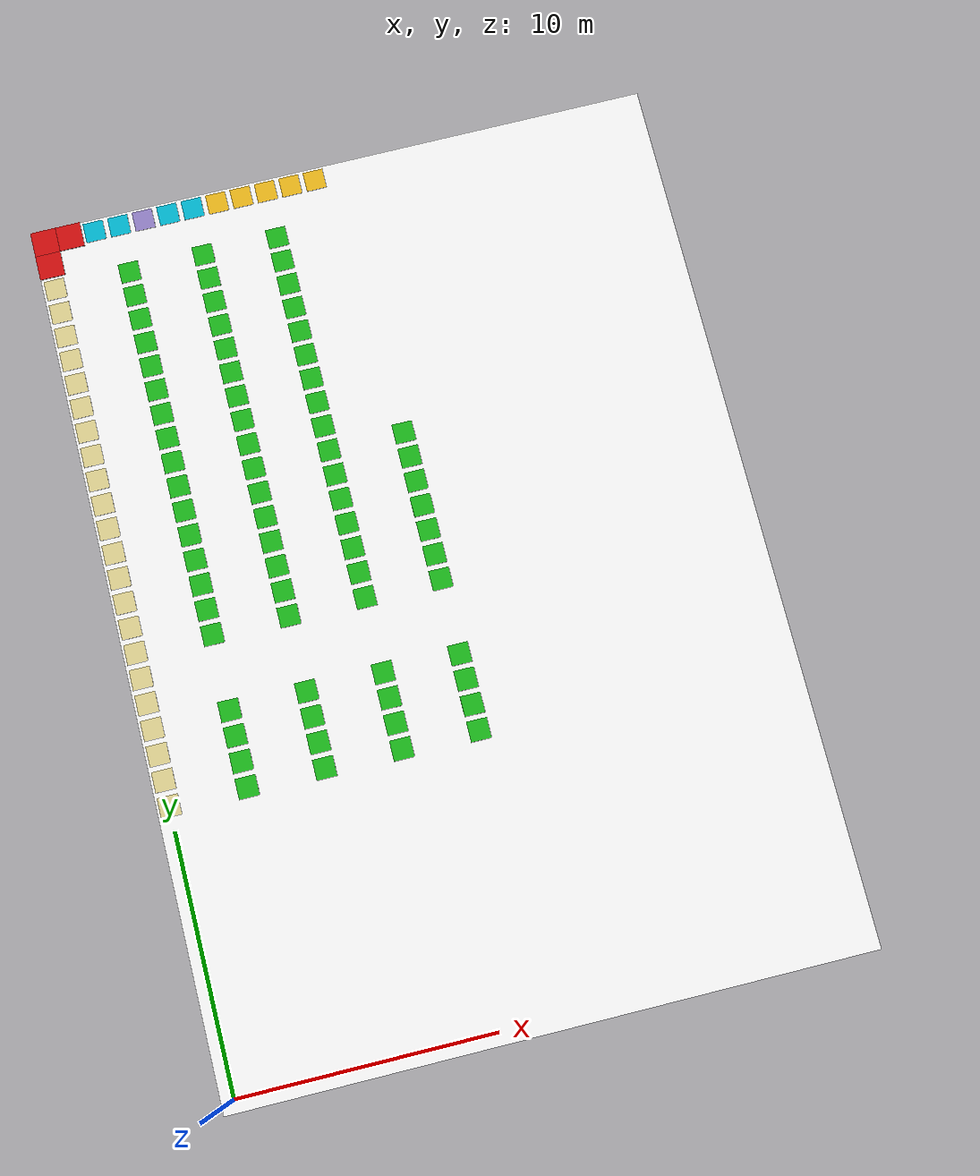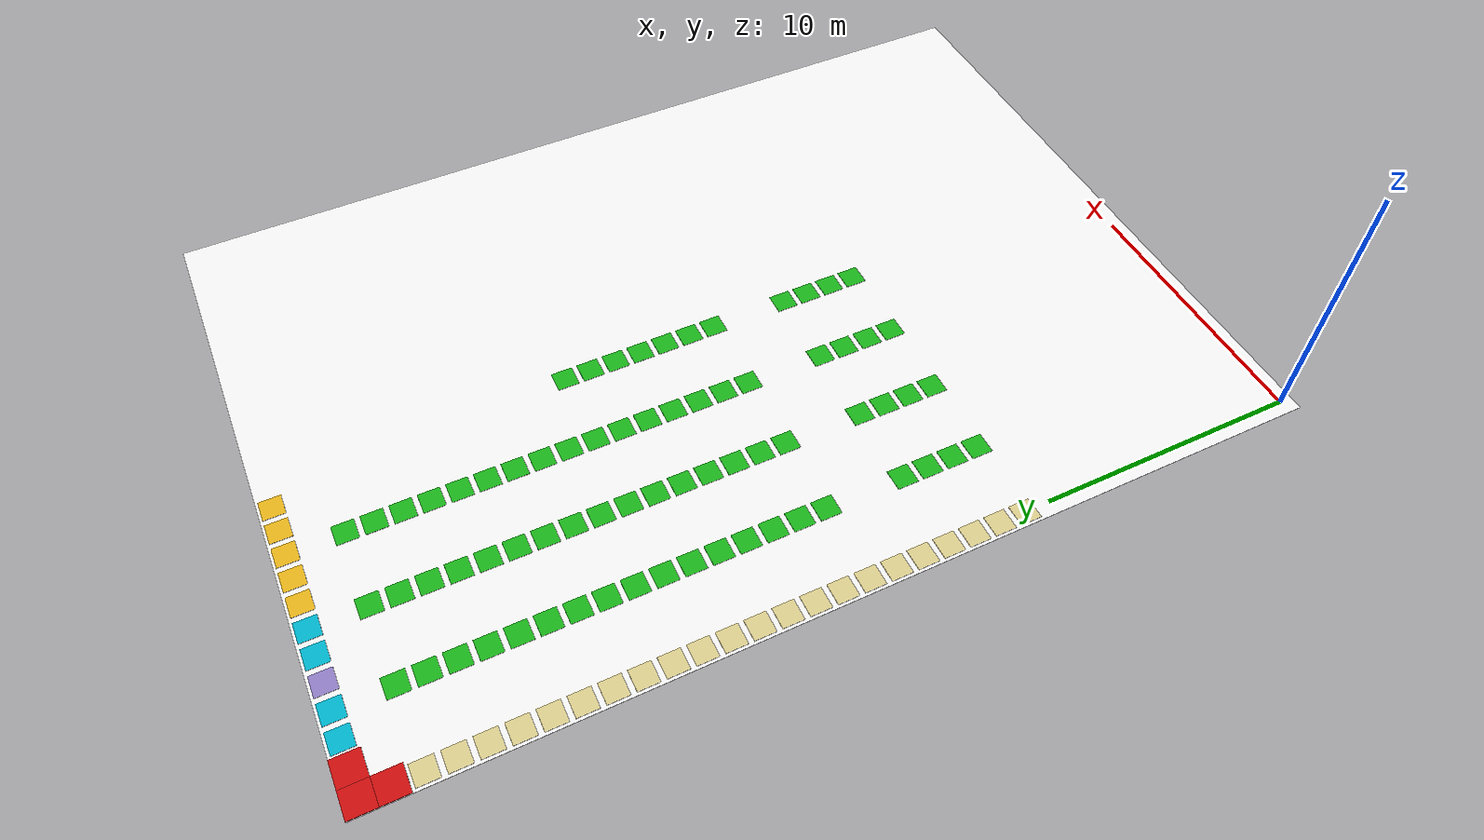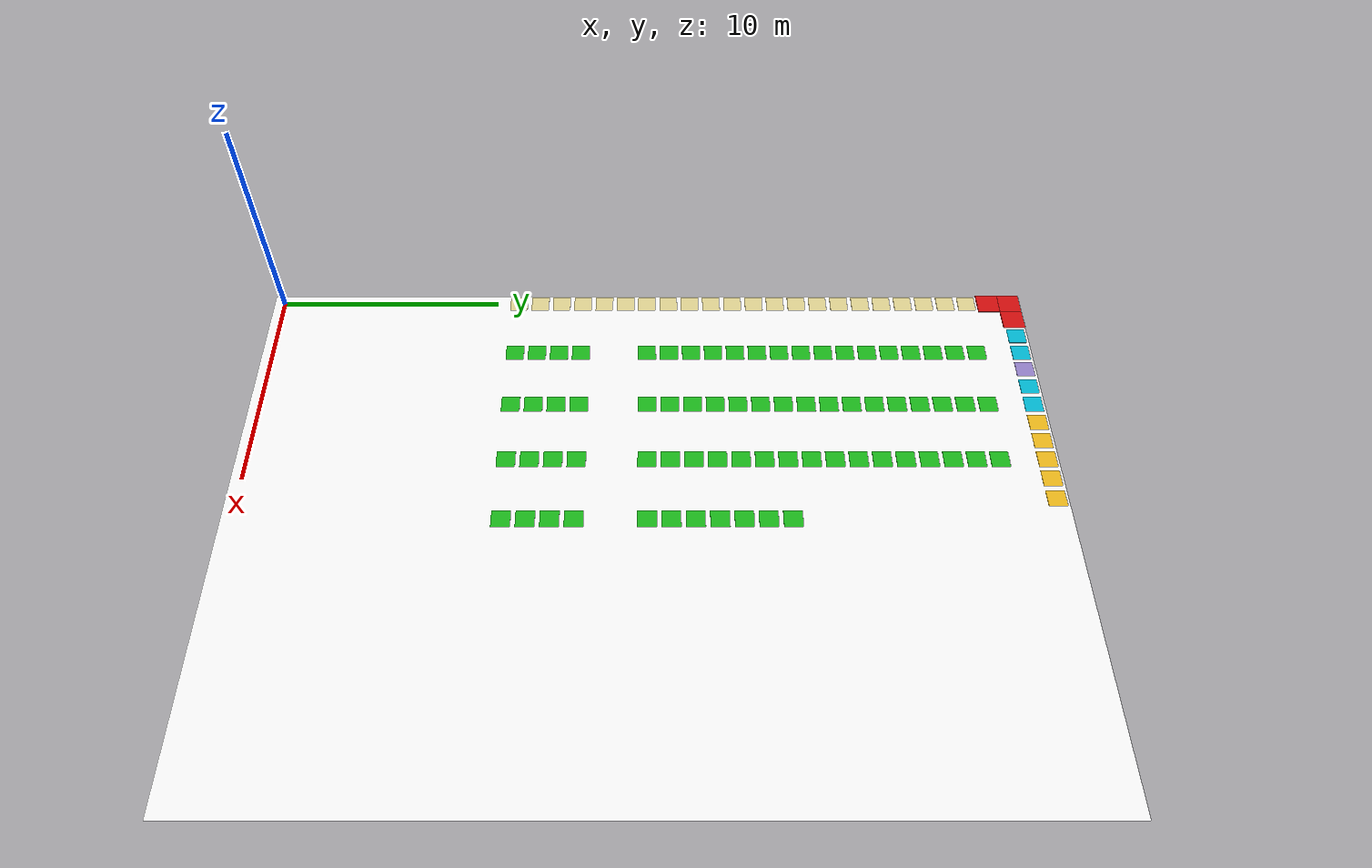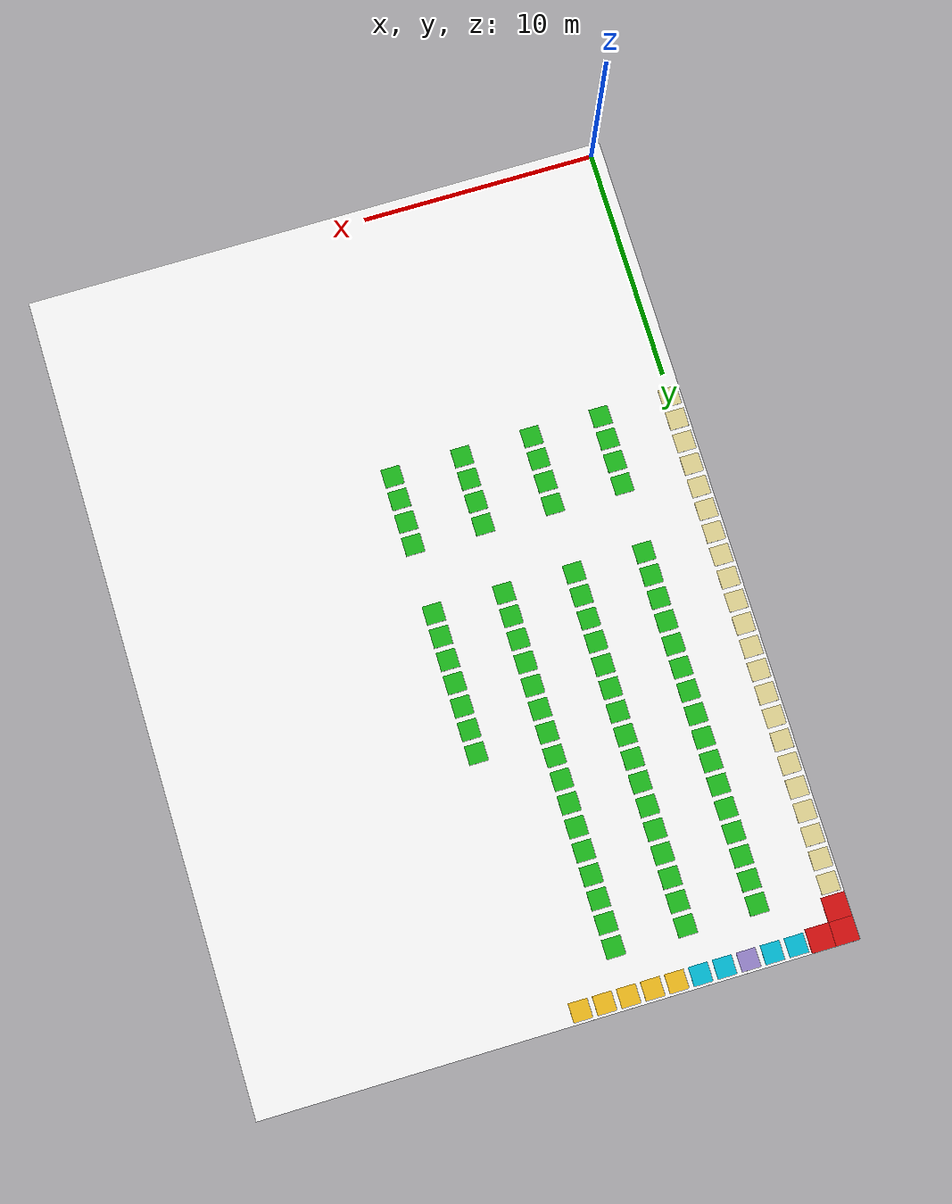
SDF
<sdf version="1.10">
 <world name="my_map_60">
  <model name="warehouse_floor">
   <static>true</static>
   <pose>12.0
        17.0
        0.0
        0 0 0</pose>
   <link name="floor_link">
    <visual name="floor_visual">
     <geometry><box><size>25.0
                35.0
                0.02</size></box></geometry>
     <material><ambient>0.95 0.95 0.95 1</ambient><diffuse>0.95 0.95 0.95 1</diffuse></material>
    </visual>
   </link>
  </model>
  <model name="blocked_0002">
   <static>true</static>
   <pose>0.0
        33.0
        0.045
        0 0 0</pose>
   <link name="link">
    <visual name="visual">
     <geometry><box><size>1.0
                1.0
                0.05</size></box></geometry>
     <material><ambient>0.8 0.05 0.05 1</ambient><diffuse>0.8 0.05 0.05 1</diffuse></material>
    </visual>
   </link>
  </model>
  <model name="blocked_0003">
   <static>true</static>
   <pose>0.0
        34.0
        0.045
        0 0 0</pose>
   <link name="link">
    <visual name="visual">
     <geometry><box><size>1.0
                1.0
                0.05</size></box></geometry>
     <material><ambient>0.8 0.05 0.05 1</ambient><diffuse>0.8 0.05 0.05 1</diffuse></material>
    </visual>
   </link>
  </model>
  <model name="blocked_0005">
   <static>true</static>
   <pose>1.0
        34.0
        0.045
        0 0 0</pose>
   <link name="link">
    <visual name="visual">
     <geometry><box><size>1.0
                1.0
                0.05</size></box></geometry>
     <material><ambient>0.8 0.05 0.05 1</ambient><diffuse>0.8 0.05 0.05 1</diffuse></material>
    </visual>
   </link>
  </model>
  <model name="charging_001">
   <static>true</static>
   <pose>2.0
        34.0
        0.02
        0 0 0</pose>
   <link name="link">
    <visual name="visual">
     <geometry><box><size>0.8
                0.8
                0.02</size></box></geometry>
     <material><ambient>0.00 0.70 0.80 1</ambient><diffuse>0.00 0.70 0.80 1</diffuse></material>
    </visual>
   </link>
  </model>
  <model name="charging_002">
   <static>true</static>
   <pose>3.0
        34.0
        0.02
        0 0 0</pose>
   <link name="link">
    <visual name="visual">
     <geometry><box><size>0.8
                0.8
                0.02</size></box></geometry>
     <material><ambient>0.00 0.70 0.80 1</ambient><diffuse>0.00 0.70 0.80 1</diffuse></material>
    </visual>
   </link>
  </model>
  <model name="charge_queue_001">
   <static>true</static>
   <pose>4.0
        34.0
        0.02
        0 0 0</pose>
   <link name="link">
    <visual name="visual">
     <geometry><box><size>0.8
                0.8
                0.02</size></box></geometry>
     <material><ambient>0.56 0.49 0.76 1</ambient><diffuse>0.56 0.49 0.76 1</diffuse></material>
    </visual>
   </link>
  </model>
  <model name="charging_003">
   <static>true</static>
   <pose>5.0
        34.0
        0.02
        0 0 0</pose>
   <link name="link">
    <visual name="visual">
     <geometry><box><size>0.8
                0.8
                0.02</size></box></geometry>
     <material><ambient>0.00 0.70 0.80 1</ambient><diffuse>0.00 0.70 0.80 1</diffuse></material>
    </visual>
   </link>
  </model>
  <model name="charging_004">
   <static>true</static>
   <pose>6.0
        34.0
        0.02
        0 0 0</pose>
   <link name="link">
    <visual name="visual">
     <geometry><box><size>0.8
                0.8
                0.02</size></box></geometry>
     <material><ambient>0.00 0.70 0.80 1</ambient><diffuse>0.00 0.70 0.80 1</diffuse></material>
    </visual>
   </link>
  </model>
  <model name="dropoff_001">
   <static>true</static>
   <pose>7.0
        34.0
        0.02
        0 0 0</pose>
   <link name="link">
    <visual name="visual">
     <geometry><box><size>0.8
                0.8
                0.02</size></box></geometry>
     <material><ambient>0.90 0.70 0.10 1</ambient><diffuse>0.90 0.70 0.10 1</diffuse></material>
    </visual>
   </link>
  </model>
  <model name="dropoff_002">
   <static>true</static>
   <pose>8.0
        34.0
        0.02
        0 0 0</pose>
   <link name="link">
    <visual name="visual">
     <geometry><box><size>0.8
                0.8
                0.02</size></box></geometry>
     <material><ambient>0.90 0.70 0.10 1</ambient><diffuse>0.90 0.70 0.10 1</diffuse></material>
    </visual>
   </link>
  </model>
  <model name="dropoff_003">
   <static>true</static>
   <pose>9.0
        34.0
        0.02
        0 0 0</pose>
   <link name="link">
    <visual name="visual">
     <geometry><box><size>0.8
                0.8
                0.02</size></box></geometry>
     <material><ambient>0.90 0.70 0.10 1</ambient><diffuse>0.90 0.70 0.10 1</diffuse></material>
    </visual>
   </link>
  </model>
  <model name="dropoff_004">
   <static>true</static>
   <pose>10.0
        34.0
        0.02
        0 0 0</pose>
   <link name="link">
    <visual name="visual">
     <geometry><box><size>0.8
                0.8
                0.02</size></box></geometry>
     <material><ambient>0.90 0.70 0.10 1</ambient><diffuse>0.90 0.70 0.10 1</diffuse></material>
    </visual>
   </link>
  </model>
  <model name="dropoff_005">
   <static>true</static>
   <pose>11.0
        34.0
        0.02
        0 0 0</pose>
   <link name="link">
    <visual name="visual">
     <geometry><box><size>0.8
                0.8
                0.02</size></box></geometry>
     <material><ambient>0.90 0.70 0.10 1</ambient><diffuse>0.90 0.70 0.10 1</diffuse></material>
    </visual>
   </link>
  </model>
  <model name="staging_001">
   <static>true</static>
   <pose>0.0
        32.0
        0.02
        0 0 0</pose>
   <link name="link">
    <visual name="visual">
     <geometry><box><size>0.8
                0.8
                0.02</size></box></geometry>
     <material><ambient>0.85 0.80 0.55 1</ambient><diffuse>0.85 0.80 0.55 1</diffuse></material>
    </visual>
   </link>
  </model>
  <model name="shelf_001">
   <static>true</static>
   <pose>3.0
        32.0
        0.02
        0 0 0</pose>
   <link name="link">
    <visual name="visual">
     <geometry><box><size>0.8
                0.8
                0.02</size></box></geometry>
     <material><ambient>0.10 0.70 0.10 1</ambient><diffuse>0.10 0.70 0.10 1</diffuse></material>
    </visual>
   </link>
  </model>
  <model name="shelf_002">
   <static>true</static>
   <pose>6.0
        32.0
        0.02
        0 0 0</pose>
   <link name="link">
    <visual name="visual">
     <geometry><box><size>0.8
                0.8
                0.02</size></box></geometry>
     <material><ambient>0.10 0.70 0.10 1</ambient><diffuse>0.10 0.70 0.10 1</diffuse></material>
    </visual>
   </link>
  </model>
  <model name="shelf_003">
   <static>true</static>
   <pose>9.0
        32.0
        0.02
        0 0 0</pose>
   <link name="link">
    <visual name="visual">
     <geometry><box><size>0.8
                0.8
                0.02</size></box></geometry>
     <material><ambient>0.10 0.70 0.10 1</ambient><diffuse>0.10 0.70 0.10 1</diffuse></material>
    </visual>
   </link>
  </model>
  <model name="staging_003">
   <static>true</static>
   <pose>0.0
        31.0
        0.02
        0 0 0</pose>
   <link name="link">
    <visual name="visual">
     <geometry><box><size>0.8
                0.8
                0.02</size></box></geometry>
     <material><ambient>0.85 0.80 0.55 1</ambient><diffuse>0.85 0.80 0.55 1</diffuse></material>
    </visual>
   </link>
  </model>
  <model name="shelf_008">
   <static>true</static>
   <pose>3.0
        31.0
        0.02
        0 0 0</pose>
   <link name="link">
    <visual name="visual">
     <geometry><box><size>0.8
                0.8
                0.02</size></box></geometry>
     <material><ambient>0.10 0.70 0.10 1</ambient><diffuse>0.10 0.70 0.10 1</diffuse></material>
    </visual>
   </link>
  </model>
  <model name="shelf_009">
   <static>true</static>
   <pose>6.0
        31.0
        0.02
        0 0 0</pose>
   <link name="link">
    <visual name="visual">
     <geometry><box><size>0.8
                0.8
                0.02</size></box></geometry>
     <material><ambient>0.10 0.70 0.10 1</ambient><diffuse>0.10 0.70 0.10 1</diffuse></material>
    </visual>
   </link>
  </model>
  <model name="shelf_010">
   <static>true</static>
   <pose>9.0
        31.0
        0.02
        0 0 0</pose>
   <link name="link">
    <visual name="visual">
     <geometry><box><size>0.8
                0.8
                0.02</size></box></geometry>
     <material><ambient>0.10 0.70 0.10 1</ambient><diffuse>0.10 0.70 0.10 1</diffuse></material>
    </visual>
   </link>
  </model>
  <model name="staging_005">
   <static>true</static>
   <pose>0.0
        30.0
        0.02
        0 0 0</pose>
   <link name="link">
    <visual name="visual">
     <geometry><box><size>0.8
                0.8
                0.02</size></box></geometry>
     <material><ambient>0.85 0.80 0.55 1</ambient><diffuse>0.85 0.80 0.55 1</diffuse></material>
    </visual>
   </link>
  </model>
  <model name="shelf_015">
   <static>true</static>
   <pose>3.0
        30.0
        0.02
        0 0 0</pose>
   <link name="link">
    <visual name="visual">
     <geometry><box><size>0.8
                0.8
                0.02</size></box></geometry>
     <material><ambient>0.10 0.70 0.10 1</ambient><diffuse>0.10 0.70 0.10 1</diffuse></material>
    </visual>
   </link>
  </model>
  <model name="shelf_016">
   <static>true</static>
   <pose>6.0
        30.0
        0.02
        0 0 0</pose>
   <link name="link">
    <visual name="visual">
     <geometry><box><size>0.8
                0.8
                0.02</size></box></geometry>
     <material><ambient>0.10 0.70 0.10 1</ambient><diffuse>0.10 0.70 0.10 1</diffuse></material>
    </visual>
   </link>
  </model>
  <model name="shelf_017">
   <static>true</static>
   <pose>9.0
        30.0
        0.02
        0 0 0</pose>
   <link name="link">
    <visual name="visual">
     <geometry><box><size>0.8
                0.8
                0.02</size></box></geometry>
     <material><ambient>0.10 0.70 0.10 1</ambient><diffuse>0.10 0.70 0.10 1</diffuse></material>
    </visual>
   </link>
  </model>
  <model name="staging_007">
   <static>true</static>
   <pose>0.0
        29.0
        0.02
        0 0 0</pose>
   <link name="link">
    <visual name="visual">
     <geometry><box><size>0.8
                0.8
                0.02</size></box></geometry>
     <material><ambient>0.85 0.80 0.55 1</ambient><diffuse>0.85 0.80 0.55 1</diffuse></material>
    </visual>
   </link>
  </model>
  <model name="shelf_022">
   <static>true</static>
   <pose>3.0
        29.0
        0.02
        0 0 0</pose>
   <link name="link">
    <visual name="visual">
     <geometry><box><size>0.8
                0.8
                0.02</size></box></geometry>
     <material><ambient>0.10 0.70 0.10 1</ambient><diffuse>0.10 0.70 0.10 1</diffuse></material>
    </visual>
   </link>
  </model>
  <model name="shelf_023">
   <static>true</static>
   <pose>6.0
        29.0
        0.02
        0 0 0</pose>
   <link name="link">
    <visual name="visual">
     <geometry><box><size>0.8
                0.8
                0.02</size></box></geometry>
     <material><ambient>0.10 0.70 0.10 1</ambient><diffuse>0.10 0.70 0.10 1</diffuse></material>
    </visual>
   </link>
  </model>
  <model name="shelf_024">
   <static>true</static>
   <pose>9.0
        29.0
        0.02
        0 0 0</pose>
   <link name="link">
    <visual name="visual">
     <geometry><box><size>0.8
                0.8
                0.02</size></box></geometry>
     <material><ambient>0.10 0.70 0.10 1</ambient><diffuse>0.10 0.70 0.10 1</diffuse></material>
    </visual>
   </link>
  </model>
  <model name="staging_009">
   <static>true</static>
   <pose>0.0
        28.0
        0.02
        0 0 0</pose>
   <link name="link">
    <visual name="visual">
     <geometry><box><size>0.8
                0.8
                0.02</size></box></geometry>
     <material><ambient>0.85 0.80 0.55 1</ambient><diffuse>0.85 0.80 0.55 1</diffuse></material>
    </visual>
   </link>
  </model>
  <model name="shelf_029">
   <static>true</static>
   <pose>3.0
        28.0
        0.02
        0 0 0</pose>
   <link name="link">
    <visual name="visual">
     <geometry><box><size>0.8
                0.8
                0.02</size></box></geometry>
     <material><ambient>0.10 0.70 0.10 1</ambient><diffuse>0.10 0.70 0.10 1</diffuse></material>
    </visual>
   </link>
  </model>
  <model name="shelf_030">
   <static>true</static>
   <pose>6.0
        28.0
        0.02
        0 0 0</pose>
   <link name="link">
    <visual name="visual">
     <geometry><box><size>0.8
                0.8
                0.02</size></box></geometry>
     <material><ambient>0.10 0.70 0.10 1</ambient><diffuse>0.10 0.70 0.10 1</diffuse></material>
    </visual>
   </link>
  </model>
  <model name="shelf_031">
   <static>true</static>
   <pose>9.0
        28.0
        0.02
        0 0 0</pose>
   <link name="link">
    <visual name="visual">
     <geometry><box><size>0.8
                0.8
                0.02</size></box></geometry>
     <material><ambient>0.10 0.70 0.10 1</ambient><diffuse>0.10 0.70 0.10 1</diffuse></material>
    </visual>
   </link>
  </model>
  <model name="staging_011">
   <static>true</static>
   <pose>0.0
        27.0
        0.02
        0 0 0</pose>
   <link name="link">
    <visual name="visual">
     <geometry><box><size>0.8
                0.8
                0.02</size></box></geometry>
     <material><ambient>0.85 0.80 0.55 1</ambient><diffuse>0.85 0.80 0.55 1</diffuse></material>
    </visual>
   </link>
  </model>
  <model name="shelf_036">
   <static>true</static>
   <pose>3.0
        27.0
        0.02
        0 0 0</pose>
   <link name="link">
    <visual name="visual">
     <geometry><box><size>0.8
                0.8
                0.02</size></box></geometry>
     <material><ambient>0.10 0.70 0.10 1</ambient><diffuse>0.10 0.70 0.10 1</diffuse></material>
    </visual>
   </link>
  </model>
  <model name="shelf_037">
   <static>true</static>
   <pose>6.0
        27.0
        0.02
        0 0 0</pose>
   <link name="link">
    <visual name="visual">
     <geometry><box><size>0.8
                0.8
                0.02</size></box></geometry>
     <material><ambient>0.10 0.70 0.10 1</ambient><diffuse>0.10 0.70 0.10 1</diffuse></material>
    </visual>
   </link>
  </model>
  <model name="shelf_038">
   <static>true</static>
   <pose>9.0
        27.0
        0.02
        0 0 0</pose>
   <link name="link">
    <visual name="visual">
     <geometry><box><size>0.8
                0.8
                0.02</size></box></geometry>
     <material><ambient>0.10 0.70 0.10 1</ambient><diffuse>0.10 0.70 0.10 1</diffuse></material>
    </visual>
   </link>
  </model>
  <model name="staging_013">
   <static>true</static>
   <pose>0.0
        26.0
        0.02
        0 0 0</pose>
   <link name="link">
    <visual name="visual">
     <geometry><box><size>0.8
                0.8
                0.02</size></box></geometry>
     <material><ambient>0.85 0.80 0.55 1</ambient><diffuse>0.85 0.80 0.55 1</diffuse></material>
    </visual>
   </link>
  </model>
  <model name="shelf_043">
   <static>true</static>
   <pose>3.0
        26.0
        0.02
        0 0 0</pose>
   <link name="link">
    <visual name="visual">
     <geometry><box><size>0.8
                0.8
                0.02</size></box></geometry>
     <material><ambient>0.10 0.70 0.10 1</ambient><diffuse>0.10 0.70 0.10 1</diffuse></material>
    </visual>
   </link>
  </model>
  <model name="shelf_044">
   <static>true</static>
   <pose>6.0
        26.0
        0.02
        0 0 0</pose>
   <link name="link">
    <visual name="visual">
     <geometry><box><size>0.8
                0.8
                0.02</size></box></geometry>
     <material><ambient>0.10 0.70 0.10 1</ambient><diffuse>0.10 0.70 0.10 1</diffuse></material>
    </visual>
   </link>
  </model>
  <model name="shelf_045">
   <static>true</static>
   <pose>9.0
        26.0
        0.02
        0 0 0</pose>
   <link name="link">
    <visual name="visual">
     <geometry><box><size>0.8
                0.8
                0.02</size></box></geometry>
     <material><ambient>0.10 0.70 0.10 1</ambient><diffuse>0.10 0.70 0.10 1</diffuse></material>
    </visual>
   </link>
  </model>
  <model name="staging_015">
   <static>true</static>
   <pose>0.0
        25.0
        0.02
        0 0 0</pose>
   <link name="link">
    <visual name="visual">
     <geometry><box><size>0.8
                0.8
                0.02</size></box></geometry>
     <material><ambient>0.85 0.80 0.55 1</ambient><diffuse>0.85 0.80 0.55 1</diffuse></material>
    </visual>
   </link>
  </model>
  <model name="shelf_050">
   <static>true</static>
   <pose>3.0
        25.0
        0.02
        0 0 0</pose>
   <link name="link">
    <visual name="visual">
     <geometry><box><size>0.8
                0.8
                0.02</size></box></geometry>
     <material><ambient>0.10 0.70 0.10 1</ambient><diffuse>0.10 0.70 0.10 1</diffuse></material>
    </visual>
   </link>
  </model>
  <model name="shelf_051">
   <static>true</static>
   <pose>6.0
        25.0
        0.02
        0 0 0</pose>
   <link name="link">
    <visual name="visual">
     <geometry><box><size>0.8
                0.8
                0.02</size></box></geometry>
     <material><ambient>0.10 0.70 0.10 1</ambient><diffuse>0.10 0.70 0.10 1</diffuse></material>
    </visual>
   </link>
  </model>
  <model name="shelf_052">
   <static>true</static>
   <pose>9.0
        25.0
        0.02
        0 0 0</pose>
   <link name="link">
    <visual name="visual">
     <geometry><box><size>0.8
                0.8
                0.02</size></box></geometry>
     <material><ambient>0.10 0.70 0.10 1</ambient><diffuse>0.10 0.70 0.10 1</diffuse></material>
    </visual>
   </link>
  </model>
  <model name="staging_017">
   <static>true</static>
   <pose>0.0
        24.0
        0.02
        0 0 0</pose>
   <link name="link">
    <visual name="visual">
     <geometry><box><size>0.8
                0.8
                0.02</size></box></geometry>
     <material><ambient>0.85 0.80 0.55 1</ambient><diffuse>0.85 0.80 0.55 1</diffuse></material>
    </visual>
   </link>
  </model>
  <model name="shelf_057">
   <static>true</static>
   <pose>3.0
        24.0
        0.02
        0 0 0</pose>
   <link name="link">
    <visual name="visual">
     <geometry><box><size>0.8
                0.8
                0.02</size></box></geometry>
     <material><ambient>0.10 0.70 0.10 1</ambient><diffuse>0.10 0.70 0.10 1</diffuse></material>
    </visual>
   </link>
  </model>
  <model name="shelf_058">
   <static>true</static>
   <pose>6.0
        24.0
        0.02
        0 0 0</pose>
   <link name="link">
    <visual name="visual">
     <geometry><box><size>0.8
                0.8
                0.02</size></box></geometry>
     <material><ambient>0.10 0.70 0.10 1</ambient><diffuse>0.10 0.70 0.10 1</diffuse></material>
    </visual>
   </link>
  </model>
  <model name="shelf_059">
   <static>true</static>
   <pose>9.0
        24.0
        0.02
        0 0 0</pose>
   <link name="link">
    <visual name="visual">
     <geometry><box><size>0.8
                0.8
                0.02</size></box></geometry>
     <material><ambient>0.10 0.70 0.10 1</ambient><diffuse>0.10 0.70 0.10 1</diffuse></material>
    </visual>
   </link>
  </model>
  <model name="staging_019">
   <static>true</static>
   <pose>0.0
        23.0
        0.02
        0 0 0</pose>
   <link name="link">
    <visual name="visual">
     <geometry><box><size>0.8
                0.8
                0.02</size></box></geometry>
     <material><ambient>0.85 0.80 0.55 1</ambient><diffuse>0.85 0.80 0.55 1</diffuse></material>
    </visual>
   </link>
  </model>
  <model name="shelf_064">
   <static>true</static>
   <pose>3.0
        23.0
        0.02
        0 0 0</pose>
   <link name="link">
    <visual name="visual">
     <geometry><box><size>0.8
                0.8
                0.02</size></box></geometry>
     <material><ambient>0.10 0.70 0.10 1</ambient><diffuse>0.10 0.70 0.10 1</diffuse></material>
    </visual>
   </link>
  </model>
  <model name="shelf_065">
   <static>true</static>
   <pose>6.0
        23.0
        0.02
        0 0 0</pose>
   <link name="link">
    <visual name="visual">
     <geometry><box><size>0.8
                0.8
                0.02</size></box></geometry>
     <material><ambient>0.10 0.70 0.10 1</ambient><diffuse>0.10 0.70 0.10 1</diffuse></material>
    </visual>
   </link>
  </model>
  <model name="shelf_066">
   <static>true</static>
   <pose>9.0
        23.0
        0.02
        0 0 0</pose>
   <link name="link">
    <visual name="visual">
     <geometry><box><size>0.8
                0.8
                0.02</size></box></geometry>
     <material><ambient>0.10 0.70 0.10 1</ambient><diffuse>0.10 0.70 0.10 1</diffuse></material>
    </visual>
   </link>
  </model>
  <model name="shelf_067">
   <static>true</static>
   <pose>12.0
        23.0
        0.02
        0 0 0</pose>
   <link name="link">
    <visual name="visual">
     <geometry><box><size>0.8
                0.8
                0.02</size></box></geometry>
     <material><ambient>0.10 0.70 0.10 1</ambient><diffuse>0.10 0.70 0.10 1</diffuse></material>
    </visual>
   </link>
  </model>
  <model name="staging_021">
   <static>true</static>
   <pose>0.0
        22.0
        0.02
        0 0 0</pose>
   <link name="link">
    <visual name="visual">
     <geometry><box><size>0.8
                0.8
                0.02</size></box></geometry>
     <material><ambient>0.85 0.80 0.55 1</ambient><diffuse>0.85 0.80 0.55 1</diffuse></material>
    </visual>
   </link>
  </model>
  <model name="shelf_071">
   <static>true</static>
   <pose>3.0
        22.0
        0.02
        0 0 0</pose>
   <link name="link">
    <visual name="visual">
     <geometry><box><size>0.8
                0.8
                0.02</size></box></geometry>
     <material><ambient>0.10 0.70 0.10 1</ambient><diffuse>0.10 0.70 0.10 1</diffuse></material>
    </visual>
   </link>
  </model>
  <model name="shelf_072">
   <static>true</static>
   <pose>6.0
        22.0
        0.02
        0 0 0</pose>
   <link name="link">
    <visual name="visual">
     <geometry><box><size>0.8
                0.8
                0.02</size></box></geometry>
     <material><ambient>0.10 0.70 0.10 1</ambient><diffuse>0.10 0.70 0.10 1</diffuse></material>
    </visual>
   </link>
  </model>
  <model name="shelf_073">
   <static>true</static>
   <pose>9.0
        22.0
        0.02
        0 0 0</pose>
   <link name="link">
    <visual name="visual">
     <geometry><box><size>0.8
                0.8
                0.02</size></box></geometry>
     <material><ambient>0.10 0.70 0.10 1</ambient><diffuse>0.10 0.70 0.10 1</diffuse></material>
    </visual>
   </link>
  </model>
  <model name="shelf_074">
   <static>true</static>
   <pose>12.0
        22.0
        0.02
        0 0 0</pose>
   <link name="link">
    <visual name="visual">
     <geometry><box><size>0.8
                0.8
                0.02</size></box></geometry>
     <material><ambient>0.10 0.70 0.10 1</ambient><diffuse>0.10 0.70 0.10 1</diffuse></material>
    </visual>
   </link>
  </model>
  <model name="staging_023">
   <static>true</static>
   <pose>0.0
        21.0
        0.02
        0 0 0</pose>
   <link name="link">
    <visual name="visual">
     <geometry><box><size>0.8
                0.8
                0.02</size></box></geometry>
     <material><ambient>0.85 0.80 0.55 1</ambient><diffuse>0.85 0.80 0.55 1</diffuse></material>
    </visual>
   </link>
  </model>
  <model name="shelf_078">
   <static>true</static>
   <pose>3.0
        21.0
        0.02
        0 0 0</pose>
   <link name="link">
    <visual name="visual">
     <geometry><box><size>0.8
                0.8
                0.02</size></box></geometry>
     <material><ambient>0.10 0.70 0.10 1</ambient><diffuse>0.10 0.70 0.10 1</diffuse></material>
    </visual>
   </link>
  </model>
  <model name="shelf_079">
   <static>true</static>
   <pose>6.0
        21.0
        0.02
        0 0 0</pose>
   <link name="link">
    <visual name="visual">
     <geometry><box><size>0.8
                0.8
                0.02</size></box></geometry>
     <material><ambient>0.10 0.70 0.10 1</ambient><diffuse>0.10 0.70 0.10 1</diffuse></material>
    </visual>
   </link>
  </model>
  <model name="shelf_080">
   <static>true</static>
   <pose>9.0
        21.0
        0.02
        0 0 0</pose>
   <link name="link">
    <visual name="visual">
     <geometry><box><size>0.8
                0.8
                0.02</size></box></geometry>
     <material><ambient>0.10 0.70 0.10 1</ambient><diffuse>0.10 0.70 0.10 1</diffuse></material>
    </visual>
   </link>
  </model>
  <model name="shelf_081">
   <static>true</static>
   <pose>12.0
        21.0
        0.02
        0 0 0</pose>
   <link name="link">
    <visual name="visual">
     <geometry><box><size>0.8
                0.8
                0.02</size></box></geometry>
     <material><ambient>0.10 0.70 0.10 1</ambient><diffuse>0.10 0.70 0.10 1</diffuse></material>
    </visual>
   </link>
  </model>
  <model name="staging_025">
   <static>true</static>
   <pose>0.0
        20.0
        0.02
        0 0 0</pose>
   <link name="link">
    <visual name="visual">
     <geometry><box><size>0.8
                0.8
                0.02</size></box></geometry>
     <material><ambient>0.85 0.80 0.55 1</ambient><diffuse>0.85 0.80 0.55 1</diffuse></material>
    </visual>
   </link>
  </model>
  <model name="shelf_085">
   <static>true</static>
   <pose>3.0
        20.0
        0.02
        0 0 0</pose>
   <link name="link">
    <visual name="visual">
     <geometry><box><size>0.8
                0.8
                0.02</size></box></geometry>
     <material><ambient>0.10 0.70 0.10 1</ambient><diffuse>0.10 0.70 0.10 1</diffuse></material>
    </visual>
   </link>
  </model>
  <model name="shelf_086">
   <static>true</static>
   <pose>6.0
        20.0
        0.02
        0 0 0</pose>
   <link name="link">
    <visual name="visual">
     <geometry><box><size>0.8
                0.8
                0.02</size></box></geometry>
     <material><ambient>0.10 0.70 0.10 1</ambient><diffuse>0.10 0.70 0.10 1</diffuse></material>
    </visual>
   </link>
  </model>
  <model name="shelf_087">
   <static>true</static>
   <pose>9.0
        20.0
        0.02
        0 0 0</pose>
   <link name="link">
    <visual name="visual">
     <geometry><box><size>0.8
                0.8
                0.02</size></box></geometry>
     <material><ambient>0.10 0.70 0.10 1</ambient><diffuse>0.10 0.70 0.10 1</diffuse></material>
    </visual>
   </link>
  </model>
  <model name="shelf_088">
   <static>true</static>
   <pose>12.0
        20.0
        0.02
        0 0 0</pose>
   <link name="link">
    <visual name="visual">
     <geometry><box><size>0.8
                0.8
                0.02</size></box></geometry>
     <material><ambient>0.10 0.70 0.10 1</ambient><diffuse>0.10 0.70 0.10 1</diffuse></material>
    </visual>
   </link>
  </model>
  <model name="staging_027">
   <static>true</static>
   <pose>0.0
        19.0
        0.02
        0 0 0</pose>
   <link name="link">
    <visual name="visual">
     <geometry><box><size>0.8
                0.8
                0.02</size></box></geometry>
     <material><ambient>0.85 0.80 0.55 1</ambient><diffuse>0.85 0.80 0.55 1</diffuse></material>
    </visual>
   </link>
  </model>
  <model name="shelf_092">
   <static>true</static>
   <pose>3.0
        19.0
        0.02
        0 0 0</pose>
   <link name="link">
    <visual name="visual">
     <geometry><box><size>0.8
                0.8
                0.02</size></box></geometry>
     <material><ambient>0.10 0.70 0.10 1</ambient><diffuse>0.10 0.70 0.10 1</diffuse></material>
    </visual>
   </link>
  </model>
  <model name="shelf_093">
   <static>true</static>
   <pose>6.0
        19.0
        0.02
        0 0 0</pose>
   <link name="link">
    <visual name="visual">
     <geometry><box><size>0.8
                0.8
                0.02</size></box></geometry>
     <material><ambient>0.10 0.70 0.10 1</ambient><diffuse>0.10 0.70 0.10 1</diffuse></material>
    </visual>
   </link>
  </model>
  <model name="shelf_094">
   <static>true</static>
   <pose>9.0
        19.0
        0.02
        0 0 0</pose>
   <link name="link">
    <visual name="visual">
     <geometry><box><size>0.8
                0.8
                0.02</size></box></geometry>
     <material><ambient>0.10 0.70 0.10 1</ambient><diffuse>0.10 0.70 0.10 1</diffuse></material>
    </visual>
   </link>
  </model>
  <model name="shelf_095">
   <static>true</static>
   <pose>12.0
        19.0
        0.02
        0 0 0</pose>
   <link name="link">
    <visual name="visual">
     <geometry><box><size>0.8
                0.8
                0.02</size></box></geometry>
     <material><ambient>0.10 0.70 0.10 1</ambient><diffuse>0.10 0.70 0.10 1</diffuse></material>
    </visual>
   </link>
  </model>
  <model name="staging_029">
   <static>true</static>
   <pose>0.0
        18.0
        0.02
        0 0 0</pose>
   <link name="link">
    <visual name="visual">
     <geometry><box><size>0.8
                0.8
                0.02</size></box></geometry>
     <material><ambient>0.85 0.80 0.55 1</ambient><diffuse>0.85 0.80 0.55 1</diffuse></material>
    </visual>
   </link>
  </model>
  <model name="shelf_099">
   <static>true</static>
   <pose>3.0
        18.0
        0.02
        0 0 0</pose>
   <link name="link">
    <visual name="visual">
     <geometry><box><size>0.8
                0.8
                0.02</size></box></geometry>
     <material><ambient>0.10 0.70 0.10 1</ambient><diffuse>0.10 0.70 0.10 1</diffuse></material>
    </visual>
   </link>
  </model>
  <model name="shelf_100">
   <static>true</static>
   <pose>6.0
        18.0
        0.02
        0 0 0</pose>
   <link name="link">
    <visual name="visual">
     <geometry><box><size>0.8
                0.8
                0.02</size></box></geometry>
     <material><ambient>0.10 0.70 0.10 1</ambient><diffuse>0.10 0.70 0.10 1</diffuse></material>
    </visual>
   </link>
  </model>
  <model name="shelf_101">
   <static>true</static>
   <pose>9.0
        18.0
        0.02
        0 0 0</pose>
   <link name="link">
    <visual name="visual">
     <geometry><box><size>0.8
                0.8
                0.02</size></box></geometry>
     <material><ambient>0.10 0.70 0.10 1</ambient><diffuse>0.10 0.70 0.10 1</diffuse></material>
    </visual>
   </link>
  </model>
  <model name="shelf_102">
   <static>true</static>
   <pose>12.0
        18.0
        0.02
        0 0 0</pose>
   <link name="link">
    <visual name="visual">
     <geometry><box><size>0.8
                0.8
                0.02</size></box></geometry>
     <material><ambient>0.10 0.70 0.10 1</ambient><diffuse>0.10 0.70 0.10 1</diffuse></material>
    </visual>
   </link>
  </model>
  <model name="staging_031">
   <static>true</static>
   <pose>0.0
        17.0
        0.02
        0 0 0</pose>
   <link name="link">
    <visual name="visual">
     <geometry><box><size>0.8
                0.8
                0.02</size></box></geometry>
     <material><ambient>0.85 0.80 0.55 1</ambient><diffuse>0.85 0.80 0.55 1</diffuse></material>
    </visual>
   </link>
  </model>
  <model name="shelf_106">
   <static>true</static>
   <pose>3.0
        17.0
        0.02
        0 0 0</pose>
   <link name="link">
    <visual name="visual">
     <geometry><box><size>0.8
                0.8
                0.02</size></box></geometry>
     <material><ambient>0.10 0.70 0.10 1</ambient><diffuse>0.10 0.70 0.10 1</diffuse></material>
    </visual>
   </link>
  </model>
  <model name="shelf_107">
   <static>true</static>
   <pose>6.0
        17.0
        0.02
        0 0 0</pose>
   <link name="link">
    <visual name="visual">
     <geometry><box><size>0.8
                0.8
                0.02</size></box></geometry>
     <material><ambient>0.10 0.70 0.10 1</ambient><diffuse>0.10 0.70 0.10 1</diffuse></material>
    </visual>
   </link>
  </model>
  <model name="shelf_108">
   <static>true</static>
   <pose>9.0
        17.0
        0.02
        0 0 0</pose>
   <link name="link">
    <visual name="visual">
     <geometry><box><size>0.8
                0.8
                0.02</size></box></geometry>
     <material><ambient>0.10 0.70 0.10 1</ambient><diffuse>0.10 0.70 0.10 1</diffuse></material>
    </visual>
   </link>
  </model>
  <model name="shelf_109">
   <static>true</static>
   <pose>12.0
        17.0
        0.02
        0 0 0</pose>
   <link name="link">
    <visual name="visual">
     <geometry><box><size>0.8
                0.8
                0.02</size></box></geometry>
     <material><ambient>0.10 0.70 0.10 1</ambient><diffuse>0.10 0.70 0.10 1</diffuse></material>
    </visual>
   </link>
  </model>
  <model name="staging_033">
   <static>true</static>
   <pose>0.0
        16.0
        0.02
        0 0 0</pose>
   <link name="link">
    <visual name="visual">
     <geometry><box><size>0.8
                0.8
                0.02</size></box></geometry>
     <material><ambient>0.85 0.80 0.55 1</ambient><diffuse>0.85 0.80 0.55 1</diffuse></material>
    </visual>
   </link>
  </model>
  <model name="staging_035">
   <static>true</static>
   <pose>0.0
        15.0
        0.02
        0 0 0</pose>
   <link name="link">
    <visual name="visual">
     <geometry><box><size>0.8
                0.8
                0.02</size></box></geometry>
     <material><ambient>0.85 0.80 0.55 1</ambient><diffuse>0.85 0.80 0.55 1</diffuse></material>
    </visual>
   </link>
  </model>
  <model name="staging_037">
   <static>true</static>
   <pose>0.0
        14.0
        0.02
        0 0 0</pose>
   <link name="link">
    <visual name="visual">
     <geometry><box><size>0.8
                0.8
                0.02</size></box></geometry>
     <material><ambient>0.85 0.80 0.55 1</ambient><diffuse>0.85 0.80 0.55 1</diffuse></material>
    </visual>
   </link>
  </model>
  <model name="shelf_113">
   <static>true</static>
   <pose>3.0
        14.0
        0.02
        0 0 0</pose>
   <link name="link">
    <visual name="visual">
     <geometry><box><size>0.8
                0.8
                0.02</size></box></geometry>
     <material><ambient>0.10 0.70 0.10 1</ambient><diffuse>0.10 0.70 0.10 1</diffuse></material>
    </visual>
   </link>
  </model>
  <model name="shelf_114">
   <static>true</static>
   <pose>6.0
        14.0
        0.02
        0 0 0</pose>
   <link name="link">
    <visual name="visual">
     <geometry><box><size>0.8
                0.8
                0.02</size></box></geometry>
     <material><ambient>0.10 0.70 0.10 1</ambient><diffuse>0.10 0.70 0.10 1</diffuse></material>
    </visual>
   </link>
  </model>
  <model name="shelf_115">
   <static>true</static>
   <pose>9.0
        14.0
        0.02
        0 0 0</pose>
   <link name="link">
    <visual name="visual">
     <geometry><box><size>0.8
                0.8
                0.02</size></box></geometry>
     <material><ambient>0.10 0.70 0.10 1</ambient><diffuse>0.10 0.70 0.10 1</diffuse></material>
    </visual>
   </link>
  </model>
  <model name="shelf_116">
   <static>true</static>
   <pose>12.0
        14.0
        0.02
        0 0 0</pose>
   <link name="link">
    <visual name="visual">
     <geometry><box><size>0.8
                0.8
                0.02</size></box></geometry>
     <material><ambient>0.10 0.70 0.10 1</ambient><diffuse>0.10 0.70 0.10 1</diffuse></material>
    </visual>
   </link>
  </model>
  <model name="staging_039">
   <static>true</static>
   <pose>0.0
        13.0
        0.02
        0 0 0</pose>
   <link name="link">
    <visual name="visual">
     <geometry><box><size>0.8
                0.8
                0.02</size></box></geometry>
     <material><ambient>0.85 0.80 0.55 1</ambient><diffuse>0.85 0.80 0.55 1</diffuse></material>
    </visual>
   </link>
  </model>
  <model name="shelf_120">
   <static>true</static>
   <pose>3.0
        13.0
        0.02
        0 0 0</pose>
   <link name="link">
    <visual name="visual">
     <geometry><box><size>0.8
                0.8
                0.02</size></box></geometry>
     <material><ambient>0.10 0.70 0.10 1</ambient><diffuse>0.10 0.70 0.10 1</diffuse></material>
    </visual>
   </link>
  </model>
  <model name="shelf_121">
   <static>true</static>
   <pose>6.0
        13.0
        0.02
        0 0 0</pose>
   <link name="link">
    <visual name="visual">
     <geometry><box><size>0.8
                0.8
                0.02</size></box></geometry>
     <material><ambient>0.10 0.70 0.10 1</ambient><diffuse>0.10 0.70 0.10 1</diffuse></material>
    </visual>
   </link>
  </model>
  <model name="shelf_122">
   <static>true</static>
   <pose>9.0
        13.0
        0.02
        0 0 0</pose>
   <link name="link">
    <visual name="visual">
     <geometry><box><size>0.8
                0.8
                0.02</size></box></geometry>
     <material><ambient>0.10 0.70 0.10 1</ambient><diffuse>0.10 0.70 0.10 1</diffuse></material>
    </visual>
   </link>
  </model>
  <model name="shelf_123">
   <static>true</static>
   <pose>12.0
        13.0
        0.02
        0 0 0</pose>
   <link name="link">
    <visual name="visual">
     <geometry><box><size>0.8
                0.8
                0.02</size></box></geometry>
     <material><ambient>0.10 0.70 0.10 1</ambient><diffuse>0.10 0.70 0.10 1</diffuse></material>
    </visual>
   </link>
  </model>
  <model name="staging_041">
   <static>true</static>
   <pose>0.0
        12.0
        0.02
        0 0 0</pose>
   <link name="link">
    <visual name="visual">
     <geometry><box><size>0.8
                0.8
                0.02</size></box></geometry>
     <material><ambient>0.85 0.80 0.55 1</ambient><diffuse>0.85 0.80 0.55 1</diffuse></material>
    </visual>
   </link>
  </model>
  <model name="shelf_127">
   <static>true</static>
   <pose>3.0
        12.0
        0.02
        0 0 0</pose>
   <link name="link">
    <visual name="visual">
     <geometry><box><size>0.8
                0.8
                0.02</size></box></geometry>
     <material><ambient>0.10 0.70 0.10 1</ambient><diffuse>0.10 0.70 0.10 1</diffuse></material>
    </visual>
   </link>
  </model>
  <model name="shelf_128">
   <static>true</static>
   <pose>6.0
        12.0
        0.02
        0 0 0</pose>
   <link name="link">
    <visual name="visual">
     <geometry><box><size>0.8
                0.8
                0.02</size></box></geometry>
     <material><ambient>0.10 0.70 0.10 1</ambient><diffuse>0.10 0.70 0.10 1</diffuse></material>
    </visual>
   </link>
  </model>
  <model name="shelf_129">
   <static>true</static>
   <pose>9.0
        12.0
        0.02
        0 0 0</pose>
   <link name="link">
    <visual name="visual">
     <geometry><box><size>0.8
                0.8
                0.02</size></box></geometry>
     <material><ambient>0.10 0.70 0.10 1</ambient><diffuse>0.10 0.70 0.10 1</diffuse></material>
    </visual>
   </link>
  </model>
  <model name="shelf_130">
   <static>true</static>
   <pose>12.0
        12.0
        0.02
        0 0 0</pose>
   <link name="link">
    <visual name="visual">
     <geometry><box><size>0.8
                0.8
                0.02</size></box></geometry>
     <material><ambient>0.10 0.70 0.10 1</ambient><diffuse>0.10 0.70 0.10 1</diffuse></material>
    </visual>
   </link>
  </model>
  <model name="staging_043">
   <static>true</static>
   <pose>0.0
        11.0
        0.02
        0 0 0</pose>
   <link name="link">
    <visual name="visual">
     <geometry><box><size>0.8
                0.8
                0.02</size></box></geometry>
     <material><ambient>0.85 0.80 0.55 1</ambient><diffuse>0.85 0.80 0.55 1</diffuse></material>
    </visual>
   </link>
  </model>
  <model name="shelf_134">
   <static>true</static>
   <pose>3.0
        11.0
        0.02
        0 0 0</pose>
   <link name="link">
    <visual name="visual">
     <geometry><box><size>0.8
                0.8
                0.02</size></box></geometry>
     <material><ambient>0.10 0.70 0.10 1</ambient><diffuse>0.10 0.70 0.10 1</diffuse></material>
    </visual>
   </link>
  </model>
  <model name="shelf_135">
   <static>true</static>
   <pose>6.0
        11.0
        0.02
        0 0 0</pose>
   <link name="link">
    <visual name="visual">
     <geometry><box><size>0.8
                0.8
                0.02</size></box></geometry>
     <material><ambient>0.10 0.70 0.10 1</ambient><diffuse>0.10 0.70 0.10 1</diffuse></material>
    </visual>
   </link>
  </model>
  <model name="shelf_136">
   <static>true</static>
   <pose>9.0
        11.0
        0.02
        0 0 0</pose>
   <link name="link">
    <visual name="visual">
     <geometry><box><size>0.8
                0.8
                0.02</size></box></geometry>
     <material><ambient>0.10 0.70 0.10 1</ambient><diffuse>0.10 0.70 0.10 1</diffuse></material>
    </visual>
   </link>
  </model>
  <model name="shelf_137">
   <static>true</static>
   <pose>12.0
        11.0
        0.02
        0 0 0</pose>
   <link name="link">
    <visual name="visual">
     <geometry><box><size>0.8
                0.8
                0.02</size></box></geometry>
     <material><ambient>0.10 0.70 0.10 1</ambient><diffuse>0.10 0.70 0.10 1</diffuse></material>
    </visual>
   </link>
  </model>
 </world>
</sdf>
